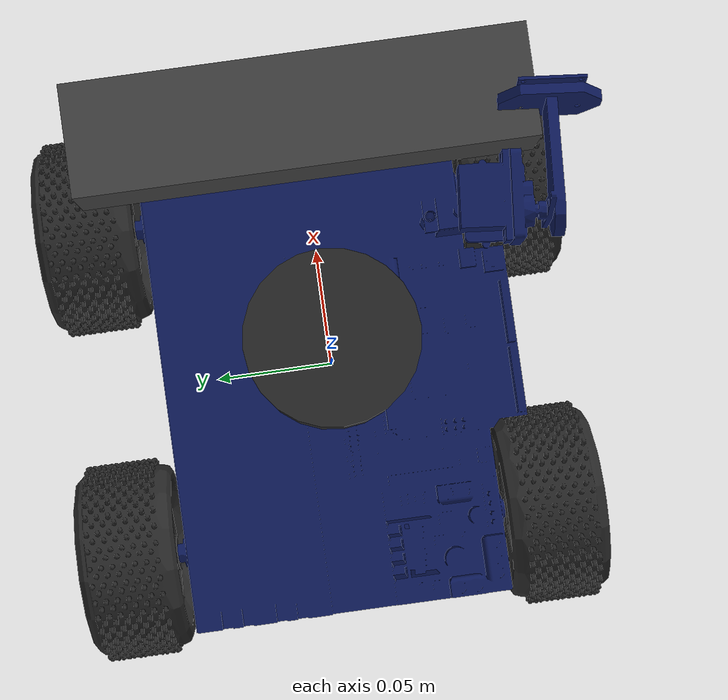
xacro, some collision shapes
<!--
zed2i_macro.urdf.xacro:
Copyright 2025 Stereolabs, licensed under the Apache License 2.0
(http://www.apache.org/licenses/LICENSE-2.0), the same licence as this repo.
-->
<?xml version="1.0"?>
<robot name="axioma_v2" xmlns:xacro="http://wiki.ros.org/xacro">

  <xacro:include filename="zed2i_macro.urdf.xacro"/>

  <link name="base_footprint"/>

  <joint name="base_footprint_joint" type="fixed">
    <parent link="base_footprint"/>
    <child link="base_link"/>
    <origin xyz="0 0 -0.00258" rpy="0 0 0"/>
  </joint>

  <!-- Base Link -->
  <link name="base_link">
    <visual>
      <geometry>
        <mesh filename="package://axioma_description/meshes/visual/chasis.stl" scale="1 1 1"/>
      </geometry>
      <origin xyz="0 0 0" rpy="0 0 0"/>
      <material name="dark_blue">
        <color rgba="0.05 0.1 0.35 1.0"/>
      </material>
    </visual>
    <collision>
      <geometry>
        <mesh filename="package://axioma_description/meshes/collision/chasis.dae" scale="1 1 1"/>
      </geometry>
      <origin xyz="0 0 0" rpy="0 0 0"/>
    </collision>
    <!-- Matches model.sdf, which is what Gazebo actually simulates. This block
         used to say 1.0 kg with a different tensor. -->
    <inertial>
      <mass value="5.0"/>
      <inertia ixx="0.1135" ixy="0" ixz="0" iyy="0.426" iyz="0" izz="0.5205"/>
    </inertial>
  </link>

  <!-- Wheel 1 (Front Left) -->
  <link name="wheel_1">
    <visual>
      <geometry>
        <mesh filename="package://axioma_description/meshes/visual/llanta.stl" scale="1 1 1"/>
      </geometry>
      <origin xyz="0 0 0" rpy="0 0 0"/>
      <material name="dark_rubber">
        <color rgba="0.15 0.15 0.15 1"/>
      </material>
    </visual>
    <collision>
      <geometry>
        <cylinder radius="0.0381" length="0.03"/>
      </geometry>
      <origin xyz="0 0.02 0" rpy="-1.5707 0 0"/>
    </collision>
    <inertial>
      <mass value="0.1"/>
      <inertia ixx="0.0029" ixy="0" ixz="0" iyy="0.0029" iyz="0" izz="0.0056"/>
    </inertial>
  </link>

  <joint name="base_to_wheel1" type="continuous">
    <parent link="base_link"/>
    <child link="wheel_1"/>
    <origin xyz="0.06442 0.07385 0.04068" rpy="3.141516 0 3.141516"/>
    <axis xyz="0 1 0"/>
  </joint>

  <!-- Wheel 2 (Rear Left) -->
  <link name="wheel_2">
    <visual>
      <geometry>
        <mesh filename="package://axioma_description/meshes/visual/llanta.stl" scale="1 1 1"/>
      </geometry>
      <origin xyz="0 0 0" rpy="0 0 0"/>
      <material name="dark_rubber"/>
    </visual>
    <collision>
      <geometry>
        <cylinder radius="0.0381" length="0.03"/>
      </geometry>
      <origin xyz="0 0.02 0" rpy="-1.5707 0 0"/>
    </collision>
    <inertial>
      <mass value="0.1"/>
      <inertia ixx="0.0029" ixy="0" ixz="0" iyy="0.0029" iyz="0" izz="0.0056"/>
    </inertial>
  </link>

  <joint name="base_to_wheel2" type="continuous">
    <parent link="base_link"/>
    <child link="wheel_2"/>
    <origin xyz="-0.071224 0.07385 0.04068" rpy="3.141516 0 3.141516"/>
    <axis xyz="0 1 0"/>
  </joint>

  <!-- Wheel 3 (Rear Right) -->
  <link name="wheel_3">
    <visual>
      <geometry>
        <mesh filename="package://axioma_description/meshes/visual/llanta.stl" scale="1 1 1"/>
      </geometry>
      <origin xyz="0 0 0" rpy="0 0 0"/>
      <material name="dark_rubber"/>
    </visual>
    <collision>
      <geometry>
        <cylinder radius="0.0381" length="0.03"/>
      </geometry>
      <origin xyz="0 0.02 0" rpy="-1.5707 0 0"/>
    </collision>
    <inertial>
      <mass value="0.1"/>
      <inertia ixx="0.0029" ixy="0" ixz="0" iyy="0.0029" iyz="0" izz="0.0056"/>
    </inertial>
  </link>

  <joint name="base_to_wheel3" type="continuous">
    <parent link="base_link"/>
    <child link="wheel_3"/>
    <origin xyz="-0.071224 -0.0625 0.04068" rpy="0 0 3.141592"/>
    <axis xyz="0 -1 0"/>
  </joint>

  <!-- Wheel 4 (Front Right) -->
  <link name="wheel_4">
    <visual>
      <geometry>
        <mesh filename="package://axioma_description/meshes/visual/llanta.stl" scale="1 1 1"/>
      </geometry>
      <origin xyz="0 0 0" rpy="0 0 0"/>
      <material name="dark_rubber"/>
    </visual>
    <collision>
      <geometry>
        <cylinder radius="0.0381" length="0.03"/>
      </geometry>
      <origin xyz="0 0.02 0" rpy="-1.5707 0 0"/>
    </collision>
    <inertial>
      <mass value="0.1"/>
      <inertia ixx="0.0029" ixy="0" ixz="0" iyy="0.0029" iyz="0" izz="0.0056"/>
    </inertial>
  </link>

  <joint name="base_to_wheel4" type="continuous">
    <parent link="base_link"/>
    <child link="wheel_4"/>
    <origin xyz="0.064423 -0.0625 0.04068" rpy="0 0 3.141592"/>
    <axis xyz="0 -1 0"/>
  </joint>

  <link name="base_scan">
    <visual>
      <geometry>
        <cylinder radius="0.031" length="0.041"/>
      </geometry>
      <origin xyz="0 0 0" rpy="0 0 0"/>
      <material name="dark_rubber"/>
    </visual>
    <collision>
      <geometry>
        <cylinder radius="0.031" length="0.041"/>
      </geometry>
      <origin xyz="0 0 0" rpy="0 0 0"/>
    </collision>
    <inertial>
      <mass value="0.125"/>
      <inertia ixx="0.001" ixy="0" ixz="0" iyy="0.001" iyz="0" izz="0.001"/>
    </inertial>
  </link>

  <joint name="lidar_joint" type="fixed">
    <parent link="base_link"/>
    <child link="base_scan"/>
    <origin xyz="0 0 0.15" rpy="0 0 0"/>
  </joint>

  <link name="imu_link">
    <inertial>
      <mass value="0.01"/>
      <inertia ixx="0.0001" ixy="0" ixz="0" iyy="0.0001" iyz="0" izz="0.0001"/>
    </inertial>
  </link>

  <joint name="imu_joint" type="fixed">
    <parent link="base_link"/>
    <child link="imu_link"/>
    <origin xyz="0 0 0.12" rpy="0 0 0"/>
  </joint>

  <!-- ==================== ZED 2i ==================== -->

  <xacro:zed2i_camera name="zed2i"/>

  <joint name="zed2i_mount_joint" type="fixed">
    <parent link="base_link"/>
    <child link="zed2i_camera_link"/>
    <origin xyz="0.098 0 0.10" rpy="0 0 0"/>
  </joint>

</robot>

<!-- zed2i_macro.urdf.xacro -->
<robot xmlns:xacro="http://wiki.ros.org/xacro">

  <xacro:macro name="zed2i_camera" params="name:=zed2i">

    <xacro:property name="baseline"         value="0.12"/>
    <xacro:property name="height"           value="0.03"/>
    <xacro:property name="screw_offset_x"   value="-0.01"/>
    <xacro:property name="optical_offset_x" value="-0.01"/>
    <xacro:property name="M_PI"             value="3.1415926535897931"/>

    <link name="${name}_camera_link"/>

    <!-- Case centre. Carries the visual, the collision and the 166 g of the
         real camera (Stereolabs' figure for the 2i with its aluminium case). -->
    <link name="${name}_camera_center">
      <visual>
        <origin xyz="${screw_offset_x} 0 0" rpy="0 0 0"/>
        <geometry>
          <mesh filename="package://axioma_description/meshes/visual/zed2i.stl"/>
        </geometry>
        <material name="zed_dark_grey">
          <color rgba="0.25 0.25 0.25 1.0"/>
        </material>
      </visual>
      <collision>
        <origin xyz="${screw_offset_x} 0 0" rpy="0 0 0"/>
        <geometry>
          <box size="0.0431 0.1753 0.0303"/>
        </geometry>
      </collision>
      <inertial>
        <mass value="0.166"/>
        <inertia ixx="0.000438" ixy="0" ixz="0"
                 iyy="0.000039" iyz="0"
                 izz="0.000451"/>
      </inertial>
    </link>

    <joint name="${name}_camera_center_joint" type="fixed">
      <parent link="${name}_camera_link"/>
      <child link="${name}_camera_center"/>
      <origin xyz="0 0 ${height/2}" rpy="0 0 0"/>
    </joint>

    <link name="${name}_left_camera_frame"/>
    <joint name="${name}_left_camera_joint" type="fixed">
      <parent link="${name}_camera_center"/>
      <child link="${name}_left_camera_frame"/>
      <origin xyz="${optical_offset_x} ${baseline/2} 0" rpy="0 0 0"/>
    </joint>

    <link name="${name}_left_camera_frame_optical"/>
    <joint name="${name}_left_camera_optical_joint" type="fixed">
      <parent link="${name}_left_camera_frame"/>
      <child link="${name}_left_camera_frame_optical"/>
      <origin xyz="0 0 0" rpy="${-M_PI/2} 0 ${-M_PI/2}"/>
    </joint>

    <link name="${name}_right_camera_frame"/>
    <joint name="${name}_right_camera_joint" type="fixed">
      <parent link="${name}_camera_center"/>
      <child link="${name}_right_camera_frame"/>
      <origin xyz="${optical_offset_x} ${-baseline/2} 0" rpy="0 0 0"/>
    </joint>

    <link name="${name}_right_camera_frame_optical"/>
    <joint name="${name}_right_camera_optical_joint" type="fixed">
      <parent link="${name}_right_camera_frame"/>
      <child link="${name}_right_camera_frame_optical"/>
      <origin xyz="0 0 0" rpy="${-M_PI/2} 0 ${-M_PI/2}"/>
    </joint>

    <link name="${name}_imu_link"/>
    <joint name="${name}_imu_joint" type="fixed">
      <parent link="${name}_left_camera_frame"/>
      <child link="${name}_imu_link"/>
      <origin xyz="0 0 0" rpy="0 0 0"/>
    </joint>

  </xacro:macro>

</robot>
